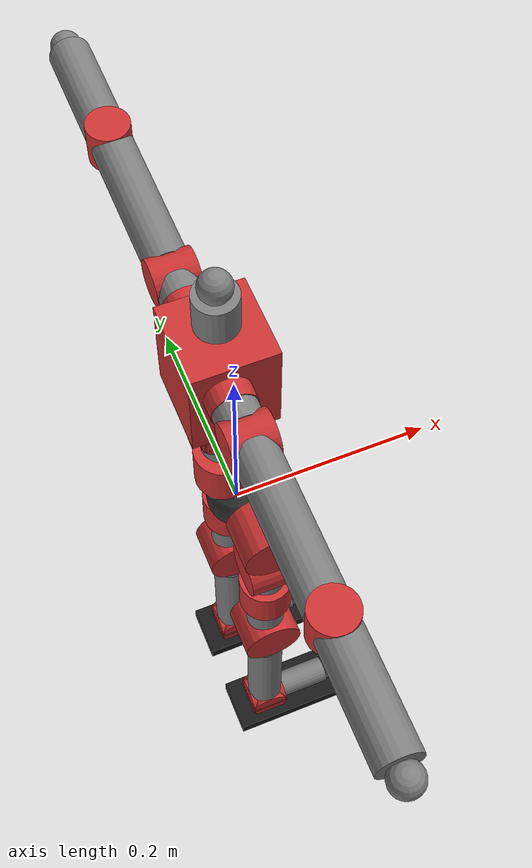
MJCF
<?xml version='1.0' encoding='utf-8'?>
<mujoco model="custom_g1_bot">
  <compiler angle="radian" meshdir="meshes/" />
  <worldbody>
    <body name="pelvis">
      <inertial pos="0 0 0" mass="0.01" diaginertia="1e-05 1e-05 1e-05" />
      <freejoint name="pelvis"/>
      <geom size="0.03" contype="0" conaffinity="0" group="1" density="0" rgba="0.2 0.2 0.2 1" name="pelvis" />
      <geom size="0.03" rgba="0.2 0.2 0.2 1" name="pelvis_geom1" />
      <body name="left_hip_pitch_link" pos="0.0093 0.0527 0.0005">
        <inertial pos="0 0 0" quat="0.5 0.5 -0.5 0.5" mass="0.48" diaginertia="0.000238 0.00022 0.00022" />
        <joint name="left_hip_pitch_joint" pos="0 0 0" axis="0 1 0" range="-3.14 3.14" actuatorfrcrange="-55 55" damping="0.1" />
        <geom size="0.0315 0.0251" quat="0.707105 0.707108 0 0" type="cylinder" contype="0" conaffinity="0" group="1" density="0" rgba="0.8 0.2 0.2 1" name="left_hip_pitch_link" />
        <geom size="0.0315 0.0251" quat="0.707105 0.707108 0 0" type="cylinder" rgba="0.8 0.2 0.2 1" name="left_hip_pitch_link_geom1" />
        <body name="left_hip_roll_link" pos="0 0 -0.06">
          <inertial pos="0 0 0" mass="0.38" diaginertia="0.000145 0.000145 0.000144" />
          <joint name="left_hip_roll_joint" pos="0 0 0" axis="1 0 0" range="-3.14 3.14" actuatorfrcrange="-25 25" damping="0.1" />
          <geom size="0.0275 0.024" quat="0.707105 0 0.707108 0" type="cylinder" contype="0" conaffinity="0" group="1" density="0" rgba="0.8 0.2 0.2 1" name="left_hip_roll_link" />
          <geom size="0.0275 0.024" quat="0.707105 0 0.707108 0" type="cylinder" rgba="0.8 0.2 0.2 1" name="left_hip_roll_link_geom1" />
          <body name="left_hip_yaw_link">
            <inertial pos="0 0 -0.066667" mass="0.4048" diaginertia="0.000503 0.000503 0.000149" />
            <joint name="left_hip_yaw_joint" pos="0 0 0" axis="0 0 1" range="-3.14 3.14" actuatorfrcrange="-25 25" damping="0.1" />
            <geom size="0.0275 0.024" pos="0 0 -0.06" type="cylinder" contype="0" conaffinity="0" group="1" density="0" rgba="0.8 0.2 0.2 1" name="left_hip_yaw_link" />
            <geom size="0.02 0.09875" pos="0 0 -0.1087" quat="-3.67321e-06 0 1 0" type="cylinder" contype="0" conaffinity="0" group="1" density="0" name="left_hip_yaw_link_geom1" />
            <geom size="0.0275 0.024" pos="0 0 -0.06" type="cylinder" name="left_hip_yaw_link_geom2" />
            <body name="left_knee_link" pos="0 0 -0.1575">
              <inertial pos="0 0 -0.005066" mass="0.5041" diaginertia="0.000554 0.000554 0.000243" />
              <joint name="left_knee_joint" pos="0 0 0" axis="0 1 0" range="-3.14 3.14" actuatorfrcrange="-55 55" damping="0.1" />
              <geom size="0.0315 0.0251" quat="0.707105 0.707108 0 0" type="cylinder" contype="0" conaffinity="0" group="1" density="0" rgba="0.8 0.2 0.2 1" name="left_knee_link" />
              <geom size="0.02 0.0959305" pos="0 0 -0.1059" quat="-3.67321e-06 0 1 0" type="cylinder" contype="0" conaffinity="0" group="1" density="0" name="left_knee_link_geom1" />
              <geom size="0.0315 0.0251" quat="0.707105 0.707108 0 0" type="cylinder" name="left_knee_link_geom2" />
              <body name="left_ankle_pitch_link" pos="0 0 -0.2119">
                <inertial pos="0 0 0" mass="0.28" diaginertia="7.1e-05 7.1e-05 6.2e-05" />
                <joint name="left_ankle_pitch_joint" pos="0 0 0" axis="0 1 0" range="-3.14 3.14" actuatorfrcrange="-10 10" damping="0.1" />
                <geom size="0.021 0.02075" quat="0.707105 0.707108 0 0" type="cylinder" contype="0" conaffinity="0" group="1" density="0" rgba="0.8 0.2 0.2 1" name="left_ankle_pitch_link" />
                <geom size="0.021 0.02075" quat="0.707105 0.707108 0 0" type="cylinder" rgba="0.8 0.2 0.2 1" name="left_ankle_pitch_link_geom1" />
                <body name="left_ankle_roll_link">
                  <inertial pos="0.026041 0 -0.009453" quat="0 0.707107 0 0.707107" mass="0.6347" diaginertia="0.001229 0.001219 0.000236" />
                  <joint name="left_ankle_roll_joint" pos="0 0 0" axis="1 0 0" range="-3.14 3.14" actuatorfrcrange="-10 10" damping="0.1" />
                  <geom size="0.021 0.02075" quat="0.707105 0 0.707108 0" type="cylinder" contype="0" conaffinity="0" group="1" density="0" rgba="0.8 0.2 0.2 1" name="left_ankle_roll_link" />
                  <geom size="0.015 0.03325" pos="0.0432 0 0" quat="0.707105 0 0.707108 0" type="cylinder" contype="0" conaffinity="0" group="1" density="0" name="left_ankle_roll_link_geom1" />
                  <geom size="0.08 0.03 0.0075" pos="0.04 0 -0.02" type="box" contype="0" conaffinity="0" group="1" density="0" rgba="0.1 0.1 0.1 1" name="left_ankle_roll_link_geom2" />
                  <geom size="0.015" pos="0.0865 0 0" contype="0" conaffinity="0" group="1" density="0" name="left_ankle_roll_link_geom3" />
                  <geom size="0.021 0.02075" quat="0.707105 0 0.707108 0" type="cylinder" name="left_ankle_roll_link_geom4" />
                  <geom size="0.08 0.03 0.0075" pos="0.04 0 -0.02" type="box" name="left_ankle_roll_link_geom5" />
                  <geom size="0.015" pos="0.0865 0 0" name="left_ankle_roll_link_geom6" />
                </body>
              </body>
            </body>
          </body>
        </body>
      </body>
      <body name="right_hip_pitch_link" pos="0.0093 -0.0527 0.0005">
        <inertial pos="0 0 0" quat="0.5 0.5 -0.5 0.5" mass="0.48" diaginertia="0.000238 0.00022 0.00022" />
        <joint name="right_hip_pitch_joint" pos="0 0 0" axis="0 1 0" range="-3.14 3.14" actuatorfrcrange="-55 55" damping="0.1" />
        <geom size="0.0315 0.0251" quat="0.707105 0.707108 0 0" type="cylinder" contype="0" conaffinity="0" group="1" density="0" rgba="0.8 0.2 0.2 1" name="right_hip_pitch_link" />
        <geom size="0.0315 0.0251" quat="0.707105 0.707108 0 0" type="cylinder" rgba="0.8 0.2 0.2 1" name="right_hip_pitch_link_geom1" />
        <body name="right_hip_roll_link" pos="0 0 -0.06">
          <inertial pos="0 0 0" mass="0.38" diaginertia="0.000145 0.000145 0.000144" />
          <joint name="right_hip_roll_joint" pos="0 0 0" axis="1 0 0" range="-3.14 3.14" actuatorfrcrange="-25 25" damping="0.1" />
          <geom size="0.0275 0.024" quat="0.707105 0 0.707108 0" type="cylinder" contype="0" conaffinity="0" group="1" density="0" rgba="0.8 0.2 0.2 1" name="right_hip_roll_link" />
          <geom size="0.0275 0.024" quat="0.707105 0 0.707108 0" type="cylinder" rgba="0.8 0.2 0.2 1" name="right_hip_roll_link_geom1" />
          <body name="right_hip_yaw_link">
            <inertial pos="0 0 -0.066667" mass="0.4048" diaginertia="0.000503 0.000503 0.000149" />
            <joint name="right_hip_yaw_joint" pos="0 0 0" axis="0 0 1" range="-3.14 3.14" actuatorfrcrange="-25 25" damping="0.1" />
            <geom size="0.0275 0.024" pos="0 0 -0.06" type="cylinder" contype="0" conaffinity="0" group="1" density="0" rgba="0.8 0.2 0.2 1" name="right_hip_yaw_link" />
            <geom size="0.02 0.09875" pos="0 0 -0.1087" quat="-3.67321e-06 0 1 0" type="cylinder" contype="0" conaffinity="0" group="1" density="0" name="right_hip_yaw_link_geom1" />
            <geom size="0.0275 0.024" pos="0 0 -0.06" type="cylinder" name="right_hip_yaw_link_geom2" />
            <body name="right_knee_link" pos="0 0 -0.1575">
              <inertial pos="0 0 -0.005066" mass="0.5041" diaginertia="0.000554 0.000554 0.000243" />
              <joint name="right_knee_joint" pos="0 0 0" axis="0 1 0" range="-3.14 3.14" actuatorfrcrange="-55 55" damping="0.1" />
              <geom size="0.0315 0.0251" quat="0.707105 0.707108 0 0" type="cylinder" contype="0" conaffinity="0" group="1" density="0" rgba="0.8 0.2 0.2 1" name="right_knee_link" />
              <geom size="0.02 0.0959305" pos="0 0 -0.1059" quat="-3.67321e-06 0 1 0" type="cylinder" contype="0" conaffinity="0" group="1" density="0" name="right_knee_link_geom1" />
              <geom size="0.0315 0.0251" quat="0.707105 0.707108 0 0" type="cylinder" name="right_knee_link_geom2" />
              <body name="right_ankle_pitch_link" pos="0 0 -0.2119">
                <inertial pos="0 0 0" mass="0.28" diaginertia="7.1e-05 7.1e-05 6.2e-05" />
                <joint name="right_ankle_pitch_joint" pos="0 0 0" axis="0 1 0" range="-3.14 3.14" actuatorfrcrange="-10 10" damping="0.1" />
                <geom size="0.021 0.02075" quat="0.707105 0.707108 0 0" type="cylinder" contype="0" conaffinity="0" group="1" density="0" rgba="0.8 0.2 0.2 1" name="right_ankle_pitch_link" />
                <geom size="0.021 0.02075" quat="0.707105 0.707108 0 0" type="cylinder" rgba="0.8 0.2 0.2 1" name="right_ankle_pitch_link_geom1" />
                <body name="right_ankle_roll_link">
                  <inertial pos="0.026041 0 -0.009453" quat="0 0.707107 0 0.707107" mass="0.6347" diaginertia="0.001229 0.001219 0.000236" />
                  <joint name="right_ankle_roll_joint" pos="0 0 0" axis="1 0 0" range="-3.14 3.14" actuatorfrcrange="-10 10" damping="0.1" />
                  <geom size="0.021 0.02075" quat="0.707105 0 0.707108 0" type="cylinder" contype="0" conaffinity="0" group="1" density="0" rgba="0.8 0.2 0.2 1" name="right_ankle_roll_link" />
                  <geom size="0.015 0.03325" pos="0.0432 0 0" quat="0.707105 0 0.707108 0" type="cylinder" contype="0" conaffinity="0" group="1" density="0" name="right_ankle_roll_link_geom1" />
                  <geom size="0.08 0.03 0.0075" pos="0.04 0 -0.02" type="box" contype="0" conaffinity="0" group="1" density="0" rgba="0.1 0.1 0.1 1" name="right_ankle_roll_link_geom2" />
                  <geom size="0.015" pos="0.0865 0 0" contype="0" conaffinity="0" group="1" density="0" name="right_ankle_roll_link_geom3" />
                  <geom size="0.021 0.02075" quat="0.707105 0 0.707108 0" type="cylinder" name="right_ankle_roll_link_geom4" />
                  <geom size="0.08 0.03 0.0075" pos="0.04 0 -0.02" type="box" name="right_ankle_roll_link_geom5" />
                  <geom size="0.015" pos="0.0865 0 0" name="right_ankle_roll_link_geom6" />
                </body>
              </body>
            </body>
          </body>
        </body>
      </body>
      <body name="waist_yaw_link" pos="-0.013 0 0.0345">
        <inertial pos="0 0 0.041693" mass="0.3906" diaginertia="0.000198 0.000198 0.000146" />
        <joint name="waist_yaw_joint" pos="0 0 0" axis="0 0 1" range="-3.14 3.14" actuatorfrcrange="-25 25" damping="0.1" />
        <geom size="0.0275 0.024" pos="0 0 0.04" type="cylinder" contype="0" conaffinity="0" group="1" density="0" rgba="0.8 0.2 0.2 1" name="waist_yaw_link" />
        <geom size="0.02 0.02147" pos="0 0 0.0315" type="cylinder" contype="0" conaffinity="0" group="1" density="0" name="waist_yaw_link_geom1" />
        <geom size="0.02 0.020858" pos="0 0 0.0938" type="cylinder" contype="0" conaffinity="0" group="1" density="0" name="waist_yaw_link_geom2" />
        <geom size="0.0275 0.024" pos="0 0 0.04" type="cylinder" name="waist_yaw_link_geom3" />
        <body name="waist_roll_link" pos="0 0 0.1247">
          <inertial pos="0 0 0" mass="0.38" diaginertia="0.000145 0.000145 0.000144" />
          <joint name="waist_roll_joint" pos="0 0 0" axis="1 0 0" range="-3.14 3.14" actuatorfrcrange="-25 25" damping="0.1" />
          <geom size="0.0275 0.024" quat="0.707105 0 0.707108 0" type="cylinder" contype="0" conaffinity="0" group="1" density="0" rgba="0.8 0.2 0.2 1" name="waist_roll_link" />
          <geom size="0.0275 0.024" quat="0.707105 0 0.707108 0" type="cylinder" rgba="0.8 0.2 0.2 1" name="waist_roll_link_geom1" />
          <body name="torso_pitch_link">
            <inertial pos="-2.8e-05 0 0.069968" mass="2.4578" diaginertia="0.005736 0.005706 0.002319" />
            <joint name="torso_pitch_joint" pos="0 0 0" axis="0 1 0" range="-3.14 3.14" actuatorfrcrange="-25 25" damping="0.1" />
            <geom size="0.0275 0.024" quat="0.707105 0.707108 0 0" type="cylinder" contype="0" conaffinity="0" group="1" density="0" rgba="0.8 0.2 0.2 1" name="torso_pitch_link" />
            <geom size="0.02 0.054582" pos="0 0 0.0646" type="cylinder" contype="0" conaffinity="0" group="1" density="0" name="torso_pitch_link_geom1" />
            <geom size="0.02 0.0194165" pos="0 0 0.1586" type="cylinder" contype="0" conaffinity="0" group="1" density="0" name="torso_pitch_link_geom2" />
            <geom size="0.015" pos="0 0 0.188" contype="0" conaffinity="0" group="1" density="0" name="torso_pitch_link_geom3" />
            <geom size="0.02 0.0182105" pos="-0.0074 0.0582 0.0987" quat="0.707105 -0.707108 0 0" type="cylinder" contype="0" conaffinity="0" group="1" density="0" name="torso_pitch_link_geom4" />
            <geom size="0.02 0.0182105" pos="-0.0074 -0.0582 0.0987" quat="0.707105 0.707108 0 0" type="cylinder" contype="0" conaffinity="0" group="1" density="0" name="torso_pitch_link_geom5" />
            <geom size="0.04 0.04 0.05" pos="0 0 0.08" type="box" contype="0" conaffinity="0" group="1" density="0" rgba="0.8 0.2 0.2 1" name="torso_pitch_link_geom6" />
            <geom size="0.0275 0.024" quat="0.707105 0.707108 0 0" type="cylinder" rgba="0.8 0.2 0.2 1" name="torso_pitch_link_geom7" />
            <geom size="0.015" pos="0 0 0.188" rgba="0.8 0.2 0.2 1" name="torso_pitch_link_geom8" />
            <geom size="0.04 0.04 0.05" pos="0 0 0.08" type="box" rgba="0.8 0.2 0.2 1" name="torso_pitch_link_geom9" />
            <body name="left_shoulder_pitch_link" pos="-0.0074 0.0864 0.0987">
              <inertial pos="0 -0.05 0" mass="0.28" diaginertia="7.1e-05 7.1e-05 6.2e-05" />
              <joint name="left_shoulder_pitch_joint" pos="0 0 0" axis="0 1 0" range="-3.14 3.14" actuatorfrcrange="-10 10" damping="0.1" />
              <geom size="0.021 0.02075" pos="0 -0.05 0" quat="0.707105 0.707108 0 0" type="cylinder" contype="0" conaffinity="0" group="1" density="0" rgba="0.8 0.2 0.2 1" name="left_shoulder_pitch_link" />
              <geom size="0.021 0.02075" pos="0 -0.05 0" quat="0.707105 0.707108 0 0" type="cylinder" rgba="0.8 0.2 0.2 1" name="left_shoulder_pitch_link_geom1" />
              <body name="left_shoulder_roll_link">
                <inertial pos="0 0 0" mass="0.28" diaginertia="7.1e-05 7.1e-05 6.2e-05" />
                <joint name="left_shoulder_roll_joint" pos="0 0 0" axis="1 0 0" range="-3.14 3.14" actuatorfrcrange="-10 10" damping="0.1" />
                <geom size="0.021 0.02075" quat="0.707105 0 0.707108 0" type="cylinder" contype="0" conaffinity="0" group="1" density="0" rgba="0.8 0.2 0.2 1" name="left_shoulder_roll_link" />
                <geom size="0.021 0.02075" quat="0.707105 0 0.707108 0" type="cylinder" rgba="0.8 0.2 0.2 1" name="left_shoulder_roll_link_geom1" />
                <body name="left_shoulder_yaw_link">
                  <inertial pos="0 0.005041 0" quat="0.707107 0.707107 0 0" mass="0.2982" diaginertia="0.000221 0.000182 0.000105" />
                  <joint name="left_shoulder_yaw_joint" pos="0 0 0" axis="0 1 0" range="-3.14 3.14" actuatorfrcrange="-10 10" damping="0.1" />
                  <geom size="0.02 0.0725" pos="0 0.0825 0" quat="0.707105 -0.707108 0 0" type="cylinder" contype="0" conaffinity="0" group="1" density="0" name="left_shoulder_yaw_link" />
                  <body name="left_elbow_link" pos="0 0.165 0">
                    <inertial pos="0 0.020795 0" quat="0.707107 0.707107 0 0" mass="0.3433" diaginertia="0.000788 0.000767 8.9e-05" />
                    <joint name="left_elbow_joint" pos="0 0 0" axis="0 0 1" range="-3.14 3.14" actuatorfrcrange="-10 10" damping="0.1" />
                    <geom size="0.021 0.02075" type="cylinder" contype="0" conaffinity="0" group="1" density="0" rgba="0.8 0.2 0.2 1" name="left_elbow_link" />
                    <geom size="0.02 0.053" pos="0 0.063 0" quat="0.707105 -0.707108 0 0" type="cylinder" contype="0" conaffinity="0" group="1" density="0" name="left_elbow_link_geom1" />
                    <geom size="0.015" pos="0 0.126 0" contype="0" conaffinity="0" group="1" density="0" name="left_elbow_link_geom2" />
                    <geom size="0.021 0.02075" type="cylinder" name="left_elbow_link_geom3" />
                    <geom size="0.015" pos="0 0.126 0" name="left_elbow_link_geom4" />
                  </body>
                </body>
              </body>
            </body>
            <body name="right_shoulder_pitch_link" pos="-0.0074 -0.0864 0.0987">
              <inertial pos="0 0.05 0" mass="0.28" diaginertia="7.1e-05 7.1e-05 6.2e-05" />
              <joint name="right_shoulder_pitch_joint" pos="0 0 0" axis="0 1 0" range="-3.14 3.14" actuatorfrcrange="-10 10" damping="0.1" />
              <geom size="0.021 0.02075" pos="0 0.05 0" quat="0.707105 0.707108 0 0" type="cylinder" contype="0" conaffinity="0" group="1" density="0" rgba="0.8 0.2 0.2 1" name="right_shoulder_pitch_link" />
              <geom size="0.021 0.02075" pos="0 0.05 0" quat="0.707105 0.707108 0 0" type="cylinder" rgba="0.8 0.2 0.2 1" name="right_shoulder_pitch_link_geom1" />
              <body name="right_shoulder_roll_link">
                <inertial pos="0 0 0" mass="0.28" diaginertia="7.1e-05 7.1e-05 6.2e-05" />
                <joint name="right_shoulder_roll_joint" pos="0 0 0" axis="1 0 0" range="-3.14 3.14" actuatorfrcrange="-10 10" damping="0.1" />
                <geom size="0.021 0.02075" quat="0.707105 0 0.707108 0" type="cylinder" contype="0" conaffinity="0" group="1" density="0" rgba="0.8 0.2 0.2 1" name="right_shoulder_roll_link" />
                <geom size="0.021 0.02075" quat="0.707105 0 0.707108 0" type="cylinder" rgba="0.8 0.2 0.2 1" name="right_shoulder_roll_link_geom1" />
                <body name="right_shoulder_yaw_link">
                  <inertial pos="0 -0.005041 0" quat="0.707107 0.707107 0 0" mass="0.2982" diaginertia="0.000221 0.000182 0.000105" />
                  <joint name="right_shoulder_yaw_joint" pos="0 0 0" axis="0 0 1" range="-3.14 3.14" actuatorfrcrange="-10 10" damping="0.1" />
                  <geom size="0.02 0.0725005" pos="0 -0.0825 0" quat="0.707105 0.707108 0 0" type="cylinder" contype="0" conaffinity="0" group="1" density="0" name="right_shoulder_yaw_link" />
                  <body name="right_elbow_link" pos="0 -0.165 0">
                    <inertial pos="0 -0.020794 0" quat="0.707107 0.707107 0 0" mass="0.3433" diaginertia="0.000788 0.000767 8.9e-05" />
                    <joint name="right_elbow_joint" pos="0 0 0" axis="0 0 1" range="-3.14 3.14" actuatorfrcrange="-10 10" damping="0.1" />
                    <geom size="0.021 0.02075" type="cylinder" contype="0" conaffinity="0" group="1" density="0" rgba="0.8 0.2 0.2 1" name="right_elbow_link" />
                    <geom size="0.02 0.0529995" pos="0 -0.063 0" quat="0.707105 0.707108 0 0" type="cylinder" contype="0" conaffinity="0" group="1" density="0" name="right_elbow_link_geom1" />
                    <geom size="0.015" pos="0 -0.126 0" contype="0" conaffinity="0" group="1" density="0" name="right_elbow_link_geom2" />
                    <geom size="0.021 0.02075" type="cylinder" name="right_elbow_link_geom3" />
                    <geom size="0.015" pos="0 -0.126 0" name="right_elbow_link_geom4" />
                  </body>
                </body>
              </body>
            </body>
          </body>
        </body>
      </body>
    </body>
  </worldbody>
  <actuator>
    <motor name="left_hip_pitch_joint" joint="left_hip_pitch_joint" gear="1" ctrlrange="-1 1" />
    <motor name="left_hip_roll_joint" joint="left_hip_roll_joint" gear="1" ctrlrange="-1 1" />
    <motor name="left_hip_yaw_joint" joint="left_hip_yaw_joint" gear="1" ctrlrange="-1 1" />
    <motor name="left_knee_joint" joint="left_knee_joint" gear="1" ctrlrange="-1 1" />
    <motor name="left_ankle_pitch_joint" joint="left_ankle_pitch_joint" gear="1" ctrlrange="-1 1" />
    <motor name="left_ankle_roll_joint" joint="left_ankle_roll_joint" gear="1" ctrlrange="-1 1" />
    <motor name="right_hip_pitch_joint" joint="right_hip_pitch_joint" gear="1" ctrlrange="-1 1" />
    <motor name="right_hip_roll_joint" joint="right_hip_roll_joint" gear="1" ctrlrange="-1 1" />
    <motor name="right_hip_yaw_joint" joint="right_hip_yaw_joint" gear="1" ctrlrange="-1 1" />
    <motor name="right_knee_joint" joint="right_knee_joint" gear="1" ctrlrange="-1 1" />
    <motor name="right_ankle_pitch_joint" joint="right_ankle_pitch_joint" gear="1" ctrlrange="-1 1" />
    <motor name="right_ankle_roll_joint" joint="right_ankle_roll_joint" gear="1" ctrlrange="-1 1" />
    <motor name="waist_yaw_joint" joint="waist_yaw_joint" gear="1" ctrlrange="-1 1" />
    <motor name="waist_roll_joint" joint="waist_roll_joint" gear="1" ctrlrange="-1 1" />
    <motor name="torso_pitch_joint" joint="torso_pitch_joint" gear="1" ctrlrange="-1 1" />
    <motor name="left_shoulder_pitch_joint" joint="left_shoulder_pitch_joint" gear="1" ctrlrange="-1 1" />
    <motor name="left_shoulder_roll_joint" joint="left_shoulder_roll_joint" gear="1" ctrlrange="-1 1" />
    <motor name="left_shoulder_yaw_joint" joint="left_shoulder_yaw_joint" gear="1" ctrlrange="-1 1" />
    <motor name="left_elbow_joint" joint="left_elbow_joint" gear="1" ctrlrange="-1 1" />
    <motor name="right_shoulder_pitch_joint" joint="right_shoulder_pitch_joint" gear="1" ctrlrange="-1 1" />
    <motor name="right_shoulder_roll_joint" joint="right_shoulder_roll_joint" gear="1" ctrlrange="-1 1" />
    <motor name="right_shoulder_yaw_joint" joint="right_shoulder_yaw_joint" gear="1" ctrlrange="-1 1" />
    <motor name="right_elbow_joint" joint="right_elbow_joint" gear="1" ctrlrange="-1 1" />
  </actuator>
</mujoco>
